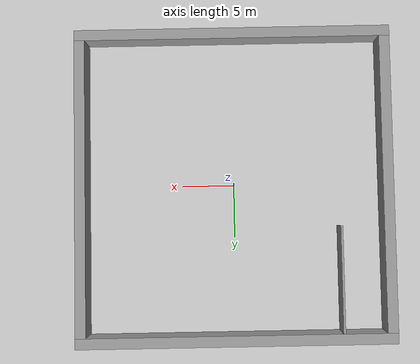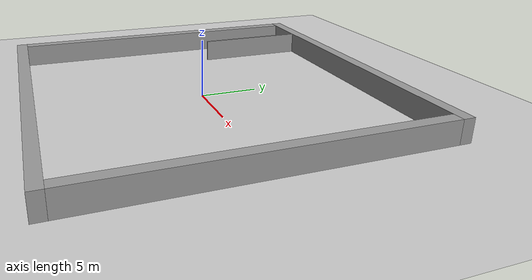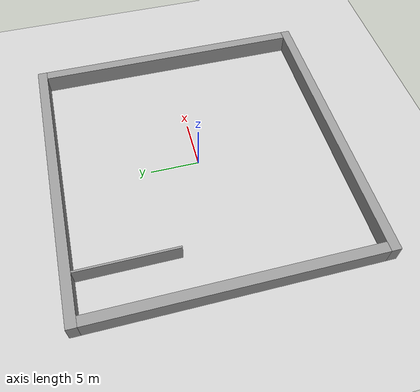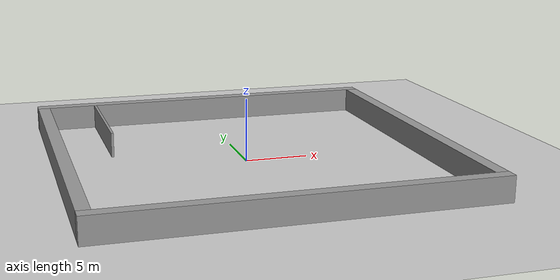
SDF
<?xml version="1.0" ?>
<sdf version='1.7'>
  <world name='my_map'>
    <light name='sun' type='directional'>
      <cast_shadows>1</cast_shadows>
      <pose>0 0 10 0 -0 0</pose>
      <diffuse>0.8 0.8 0.8 1</diffuse>
      <specular>0.2 0.2 0.2 1</specular>
      <attenuation>
        <range>1000</range>
        <constant>0.9</constant>
        <linear>0.01</linear>
        <quadratic>0.001</quadratic>
      </attenuation>
      <direction>-0.5 0.1 -0.9</direction>
      <spot>
        <inner_angle>0</inner_angle>
        <outer_angle>0</outer_angle>
        <falloff>0</falloff>
      </spot>
    </light>
    <gravity>0 0 -9.8</gravity>
    <magnetic_field>6e-06 2.3e-05 -4.2e-05</magnetic_field>
    <atmosphere type='adiabatic'/>
    <physics type='ode'>
      <max_step_size>0.001</max_step_size>
      <real_time_factor>1</real_time_factor>
      <real_time_update_rate>1000</real_time_update_rate>
    </physics>
    <scene>
      <ambient>0.4 0.4 0.4 1</ambient>
      <background>0.7 0.7 0.7 1</background>
      <shadows>1</shadows>
    </scene>
    <wind/>
    <spherical_coordinates>
      <surface_model>EARTH_WGS84</surface_model>
      <latitude_deg>0</latitude_deg>
      <longitude_deg>0</longitude_deg>
      <elevation>0</elevation>
      <heading_deg>0</heading_deg>
    </spherical_coordinates>
    <gui fullscreen='0'>
      <camera name='user_camera'>
        <pose>9.96296 -6.91753 41.8531 0 1.2058 1.69694</pose>
        <view_controller>orbit</view_controller>
        <projection_type>perspective</projection_type>
      </camera>
    </gui>
    <model name='ground_plane'>
      <static>1</static>
      <link name='link'>
        <collision name='collision'>
          <geometry>
            <plane>
              <normal>0 0 1</normal>
              <size>30 30</size>
            </plane>
          </geometry>
          <surface>
            <friction>
              <ode>
                <mu>2.0</mu>
                <mu2>2.0</mu2>
              </ode>
              <torsional>
                <ode/>
              </torsional>
            </friction>
            <contact>
              <ode>
                <kp>1000000.0</kp>
                <kd>10.0</kd>
                <max_vel>0.1</max_vel>
                <min_depth>0.001</min_depth>
              </ode>
            </contact>
            <bounce/>
          </surface>
          <max_contacts>10</max_contacts>
        </collision>
        <visual name='visual'>
          <cast_shadows>0</cast_shadows>
          <geometry>
            <plane>
              <normal>0 0 1</normal>
              <size>30 30</size>
            </plane>
          </geometry>
          <material>
            <script>
              <uri>file://media/materials/scripts/gazebo.material</uri>
              <name>Gazebo/Grey</name>
            </script>
          </material>
        </visual>
        <self_collide>0</self_collide>
        <enable_wind>0</enable_wind>
        <kinematic>0</kinematic>
      </link>
      <pose>0 0 0 0 -0 0</pose>
    </model>
    <model name='wall_1'>
      <static>1</static>
      <pose>0 14.5 1 0 -0 0</pose>
      <link name='link'>
        <collision name='collision'>
          <geometry>
            <box>
              <size>30 1 2</size>
            </box>
          </geometry>
          <max_contacts>10</max_contacts>
          <surface>
            <contact>
              <ode>
                <kp>1000000.0</kp>
                <kd>10.0</kd>
                <max_vel>0.1</max_vel>
                <min_depth>0.001</min_depth>
              </ode>
            </contact>
            <bounce/>
            <friction>
              <torsional>
                <ode/>
              </torsional>
              <ode/>
            </friction>
          </surface>
        </collision>
        <visual name='visual'>
          <geometry>
            <box>
              <size>30 1 2</size>
            </box>
          </geometry>
          <material>
            <script>
              <name>Gazebo/Grey</name>
              <uri>file://media/materials/scripts/gazebo.material</uri>
            </script>
          </material>
        </visual>
        <self_collide>0</self_collide>
        <enable_wind>0</enable_wind>
        <kinematic>0</kinematic>
      </link>
    </model>
    <model name='wall_2'>
      <static>1</static>
      <pose>0 -14.5 1 0 -0 0</pose>
      <link name='link'>
        <collision name='collision'>
          <geometry>
            <box>
              <size>30 1 2</size>
            </box>
          </geometry>
          <max_contacts>10</max_contacts>
          <surface>
            <contact>
              <ode>
                <kp>1000000.0</kp>
                <kd>10.0</kd>
                <max_vel>0.1</max_vel>
                <min_depth>0.001</min_depth>
              </ode>
            </contact>
            <bounce/>
            <friction>
              <torsional>
                <ode/>
              </torsional>
              <ode/>
            </friction>
          </surface>
        </collision>
        <visual name='visual'>
          <geometry>
            <box>
              <size>30 1 2</size>
            </box>
          </geometry>
          <material>
            <script>
              <name>Gazebo/Grey</name>
              <uri>file://media/materials/scripts/gazebo.material</uri>
            </script>
          </material>
        </visual>
        <self_collide>0</self_collide>
        <enable_wind>0</enable_wind>
        <kinematic>0</kinematic>
      </link>
    </model>
    <model name='wall_3'>
      <static>1</static>
      <pose>14.5 0 1 0 -0 0</pose>
      <link name='link'>
        <collision name='collision'>
          <geometry>
            <box>
              <size>1 28 2</size>
            </box>
          </geometry>
          <max_contacts>10</max_contacts>
          <surface>
            <contact>
              <ode>
                <kp>1000000.0</kp>
                <kd>10.0</kd>
                <max_vel>0.1</max_vel>
                <min_depth>0.001</min_depth>
              </ode>
            </contact>
            <bounce/>
            <friction>
              <torsional>
                <ode/>
              </torsional>
              <ode/>
            </friction>
          </surface>
        </collision>
        <visual name='visual'>
          <geometry>
            <box>
              <size>1 28 2</size>
            </box>
          </geometry>
          <material>
            <script>
              <name>Gazebo/Grey</name>
              <uri>file://media/materials/scripts/gazebo.material</uri>
            </script>
          </material>
        </visual>
        <self_collide>0</self_collide>
        <enable_wind>0</enable_wind>
        <kinematic>0</kinematic>
      </link>
    </model>
    <model name='wall_4'>
      <static>1</static>
      <pose>-14.5 0 1 0 -0 0</pose>
      <link name='link'>
        <collision name='collision'>
          <geometry>
            <box>
              <size>1 28 2</size>
            </box>
          </geometry>
          <max_contacts>10</max_contacts>
          <surface>
            <contact>
              <ode>
                <kp>1000000.0</kp>
                <kd>10.0</kd>
                <max_vel>0.1</max_vel>
                <min_depth>0.001</min_depth>
              </ode>
            </contact>
            <bounce/>
            <friction>
              <torsional>
                <ode/>
              </torsional>
              <ode/>
            </friction>
          </surface>
        </collision>
        <visual name='visual'>
          <geometry>
            <box>
              <size>1 28 2</size>
            </box>
          </geometry>
          <material>
            <script>
              <name>Gazebo/Grey</name>
              <uri>file://media/materials/scripts/gazebo.material</uri>
            </script>
          </material>
        </visual>
        <self_collide>0</self_collide>
        <enable_wind>0</enable_wind>
        <kinematic>0</kinematic>
      </link>
    </model>
    <model name='wall_5'>
      <static>1</static>
      <pose>-10 9 1 0 -0 0</pose>
      <link name='link'>
        <collision name='collision'>
          <geometry>
            <box>
              <size>0.2 10 2</size>
            </box>
          </geometry>
          <max_contacts>10</max_contacts>
          <surface>
            <contact>
              <ode>
                <kp>1000000.0</kp>
                <kd>10.0</kd>
                <max_vel>0.1</max_vel>
                <min_depth>0.001</min_depth>
              </ode>
            </contact>
            <bounce/>
            <friction>
              <torsional>
                <ode/>
              </torsional>
              <ode/>
            </friction>
          </surface>
        </collision>
        <visual name='visual'>
          <geometry>
            <box>
              <size>0.2 10 2</size>
            </box>
          </geometry>
          <material>
            <script>
              <name>Gazebo/Grey</name>
              <uri>file://media/materials/scripts/gazebo.material</uri>
            </script>
          </material>
        </visual>
        <self_collide>0</self_collide>
        <enable_wind>0</enable_wind>
        <kinematic>0</kinematic>
      </link>
    </model>

  </world>
</sdf>
